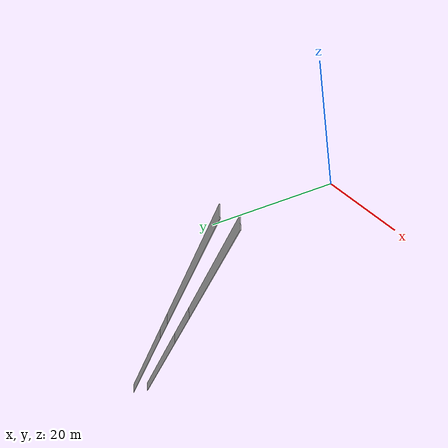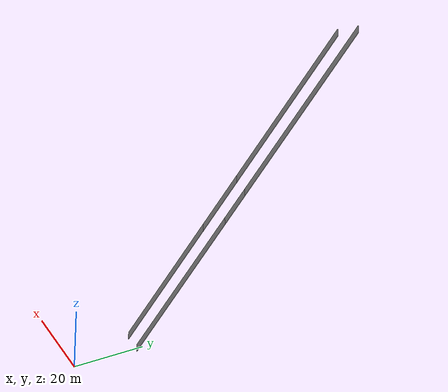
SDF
<?xml version="1.0" ?>
<sdf version="1.6">
  <model name="sps_0723">
    <pose frame="">0 0 0 0 -0 0</pose>
    <static>1</static>
    <self_collide>0</self_collide>
    <allow_auto_disable>0</allow_auto_disable>
    <link name="Wall226">
      <kinematic>0</kinematic>
      <gravity>1</gravity>
      <self_collide>0</self_collide>
      <collision name="collision">
        <geometry>
          <box>
            <size>56.7206 0.15 2.5</size>
          </box>
        </geometry>
        <pose frame="">0 0 0 0 -0 0</pose>
      </collision>
      <visual name="visual">
        <geometry>
          <box>
            <size>56.7206 0.15 2.5</size>
          </box>
        </geometry>
        <pose frame="">0 0 0 0 -0 0</pose>
        <cast_shadows>1</cast_shadows>
        <transparency>0.0</transparency>
      </visual>
      <pose frame="">65.9412 89.3643 1.25 0 0 -2.28275</pose>
    </link>
    <link name="Wall227">
      <kinematic>0</kinematic>
      <gravity>1</gravity>
      <self_collide>0</self_collide>
      <collision name="collision">
        <geometry>
          <box>
            <size>19.8122 0.15 2.5</size>
          </box>
        </geometry>
        <pose frame="">0 0 0 0 -0 0</pose>
      </collision>
      <visual name="visual">
        <geometry>
          <box>
            <size>19.8122 0.15 2.5</size>
          </box>
        </geometry>
        <pose frame="">0 0 0 0 -0 0</pose>
        <cast_shadows>1</cast_shadows>
        <transparency>0.0</transparency>
      </visual>
      <pose frame="">40.9412 60.3933 1.25 0 0 -2.28275</pose>
    </link>
    <link name="Wall228">
      <kinematic>0</kinematic>
      <gravity>1</gravity>
      <self_collide>0</self_collide>
      <collision name="collision">
        <geometry>
          <box>
            <size>46.2304 0.15 2.5</size>
          </box>
        </geometry>
        <pose frame="">0 0 0 0 -0 0</pose>
      </collision>
      <visual name="visual">
        <geometry>
          <box>
            <size>46.2304 0.15 2.5</size>
          </box>
        </geometry>
        <pose frame="">0 0 0 0 -0 0</pose>
        <cast_shadows>1</cast_shadows>
        <transparency>0.0</transparency>
      </visual>
      <pose frame="">19.3679 35.3933 1.25 0 0 -2.28275</pose>
    </link>
    <link name="Wall447">
      <kinematic>0</kinematic>
      <gravity>1</gravity>
      <self_collide>0</self_collide>
      <collision name="collision">
        <geometry>
          <box>
            <size>63.4001 0.15 2.5</size>
          </box>
        </geometry>
        <pose frame="">0 0 0 0 -0 0</pose>
      </collision>
      <visual name="visual">
        <geometry>
          <box>
            <size>63.4001 0.15 2.5</size>
          </box>
        </geometry>
        <pose frame="">0 0 0 0 -0 0</pose>
        <cast_shadows>1</cast_shadows>
        <transparency>0.0</transparency>
      </visual>
      <pose frame="">62.8374 91.893 1.25 0 0 -2.28274</pose>
    </link>
    <link name="Wall448">
      <kinematic>0</kinematic>
      <gravity>1</gravity>
      <self_collide>0</self_collide>
      <collision name="collision">
        <geometry>
          <box>
            <size>11.7221 0.15 2.5</size>
          </box>
        </geometry>
        <pose frame="">0 0 0 0 -0 0</pose>
      </collision>
      <visual name="visual">
        <geometry>
          <box>
            <size>11.7221 0.15 2.5</size>
          </box>
        </geometry>
        <pose frame="">0 0 0 0 -0 0</pose>
        <cast_shadows>1</cast_shadows>
        <transparency>0.0</transparency>
      </visual>
      <pose frame="">38.2985 63.4557 1.25 0 0 -2.28274</pose>
    </link>
    <link name="Wall449">
      <kinematic>0</kinematic>
      <gravity>1</gravity>
      <self_collide>0</self_collide>
      <collision name="collision">
        <geometry>
          <box>
            <size>54.32 0.15 2.5</size>
          </box>
        </geometry>
        <pose frame="">0 0 0 0 -0 0</pose>
      </collision>
      <visual name="visual">
        <geometry>
          <box>
            <size>54.32 0.15 2.5</size>
          </box>
        </geometry>
        <pose frame="">0 0 0 0 -0 0</pose>
        <cast_shadows>1</cast_shadows>
        <transparency>0.0</transparency>
      </visual>
      <pose frame="">16.7256 38.4557 1.25 0 0 -2.28274</pose>
    </link>
  </model>
</sdf>
